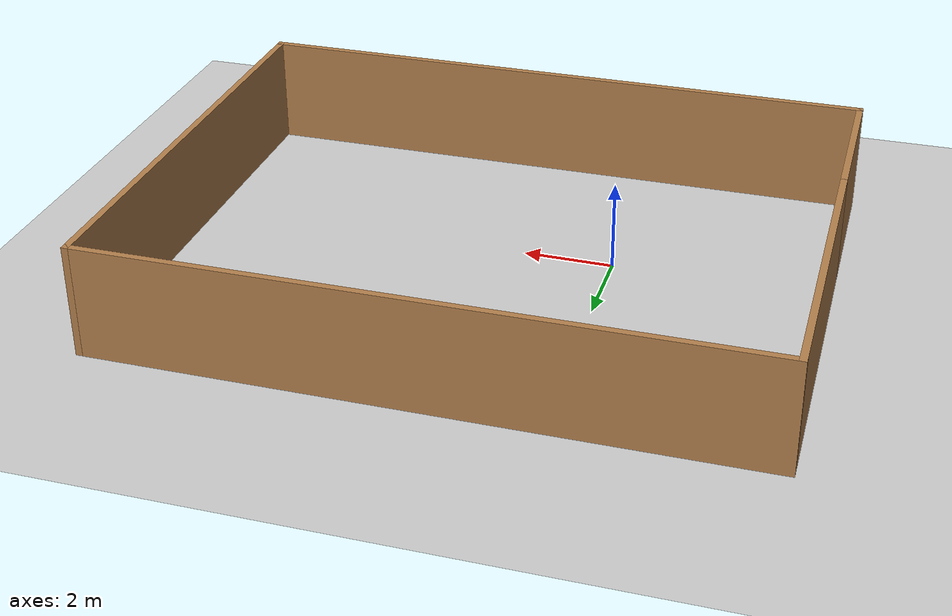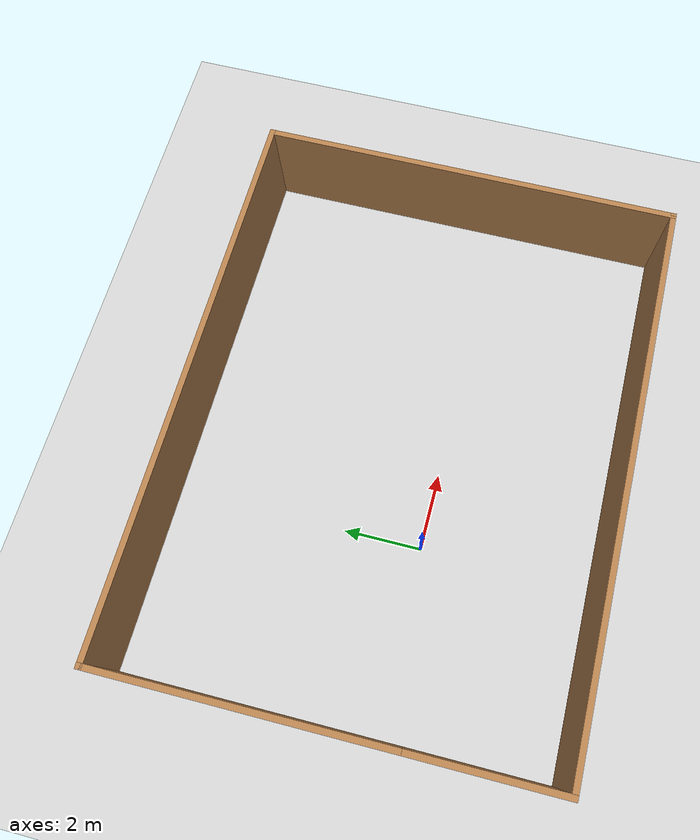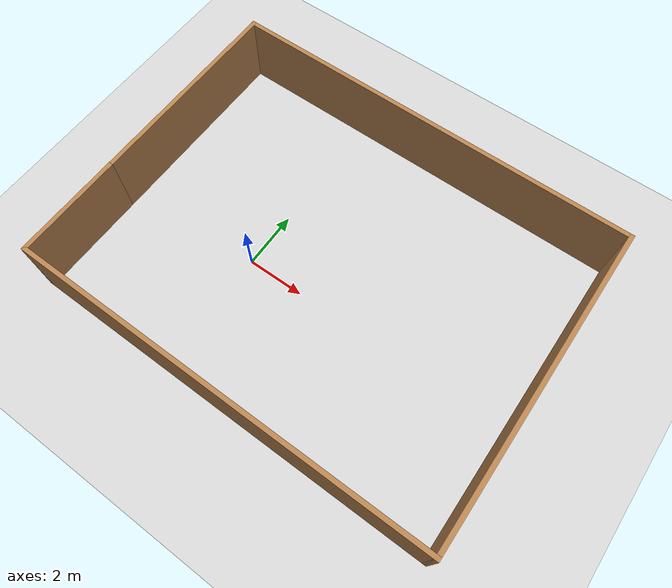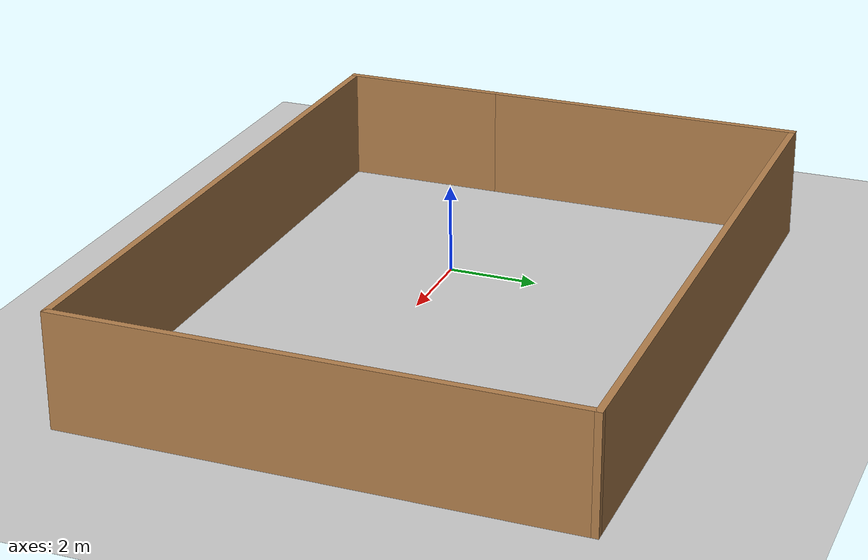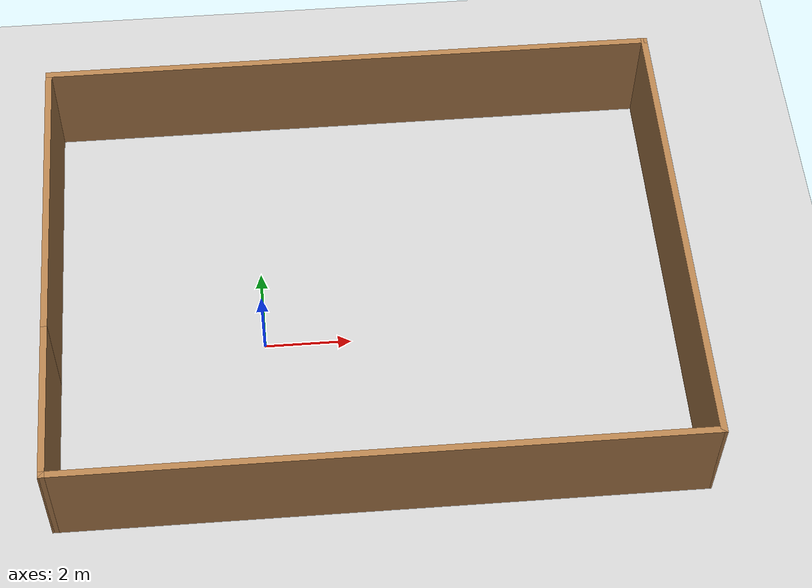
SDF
<!-- /home/wagle/mandooka_ws/src/mandooka/worlds/room/room.world -->
<sdf version="1.6">
  <world name="default">
    <include>
      <uri>model://sun</uri>
    </include>
    <include>
      <uri>model://ground_plane</uri>
    </include>
    <include>
      <uri>file://room/model.sdf</uri>
    </include>
  </world>
</sdf>

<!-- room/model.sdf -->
<sdf version='1.7'>
  <model name='room'>
    <pose>2.405 1.055 0 0 -0 0</pose>
    <link name='Wall_1'>
      <collision name='Wall_1_Collision'>
        <geometry>
          <box>
            <size>3.75 0.15 2.5</size>
          </box>
        </geometry>
        <pose>0 0 1.25 0 -0 0</pose>
      </collision>
      <visual name='Wall_1_Visual'>
        <pose>0 0 1.25 0 -0 0</pose>
        <geometry>
          <box>
            <size>3.75 0.15 2.5</size>
          </box>
        </geometry>
        <material>
          <script>
            <uri>file://media/materials/scripts/gazebo.material</uri>
            <name>Gazebo/Wood</name>
          </script>
          <ambient>1 1 1 1</ambient>
        </material>
        <meta>
          <layer>0</layer>
        </meta>
      </visual>
      <pose>-7.175 -3.625 0 0 -0 -1.5708</pose>
    </link>
    <link name='Wall_2'>
      <collision name='Wall_2_Collision'>
        <geometry>
          <box>
            <size>14.5 0.15 2.5</size>
          </box>
        </geometry>
        <pose>0 0 1.25 0 -0 0</pose>
      </collision>
      <visual name='Wall_2_Visual'>
        <pose>0 0 1.25 0 -0 0</pose>
        <geometry>
          <box>
            <size>14.5 0.15 2.5</size>
          </box>
        </geometry>
        <material>
          <script>
            <uri>file://media/materials/scripts/gazebo.material</uri>
            <name>Gazebo/Wood</name>
          </script>
          <ambient>1 1 1 1</ambient>
        </material>
        <meta>
          <layer>0</layer>
        </meta>
      </visual>
      <pose>-0 -5.425 0 0 -0 0</pose>
    </link>
    <link name='Wall_3'>
      <collision name='Wall_3_Collision'>
        <geometry>
          <box>
            <size>11 0.15 2.5</size>
          </box>
        </geometry>
        <pose>0 0 1.25 0 -0 0</pose>
      </collision>
      <visual name='Wall_3_Visual'>
        <pose>0 0 1.25 0 -0 0</pose>
        <geometry>
          <box>
            <size>11 0.15 2.5</size>
          </box>
        </geometry>
        <material>
          <script>
            <uri>file://media/materials/scripts/gazebo.material</uri>
            <name>Gazebo/Wood</name>
          </script>
          <ambient>1 1 1 1</ambient>
        </material>
        <meta>
          <layer>0</layer>
        </meta>
      </visual>
      <pose>7.175 0 0 0 -0 1.5708</pose>
    </link>
    <link name='Wall_4'>
      <collision name='Wall_4_Collision'>
        <geometry>
          <box>
            <size>14.5 0.15 2.5</size>
          </box>
        </geometry>
        <pose>0 0 1.25 0 -0 0</pose>
      </collision>
      <visual name='Wall_4_Visual'>
        <pose>0 0 1.25 0 -0 0</pose>
        <geometry>
          <box>
            <size>14.5 0.15 2.5</size>
          </box>
        </geometry>
        <material>
          <script>
            <uri>file://media/materials/scripts/gazebo.material</uri>
            <name>Gazebo/Wood</name>
          </script>
          <ambient>1 1 1 1</ambient>
        </material>
        <meta>
          <layer>0</layer>
        </meta>
      </visual>
      <pose>-0 5.425 0 0 -0 3.14159</pose>
    </link>
    <link name='Wall_5'>
      <collision name='Wall_5_Collision'>
        <geometry>
          <box>
            <size>7.25 0.15 2.5</size>
          </box>
        </geometry>
        <pose>0 0 1.25 0 -0 0</pose>
      </collision>
      <visual name='Wall_5_Visual'>
        <pose>0 0 1.25 0 -0 0</pose>
        <geometry>
          <box>
            <size>7.25 0.15 2.5</size>
          </box>
        </geometry>
        <material>
          <script>
            <uri>file://media/materials/scripts/gazebo.material</uri>
            <name>Gazebo/Wood</name>
          </script>
          <ambient>1 1 1 1</ambient>
        </material>
        <meta>
          <layer>0</layer>
        </meta>
      </visual>
      <pose>-7.175 1.875 0 0 -0 -1.5708</pose>
    </link>
    <static>1</static>
  </model>
</sdf>
